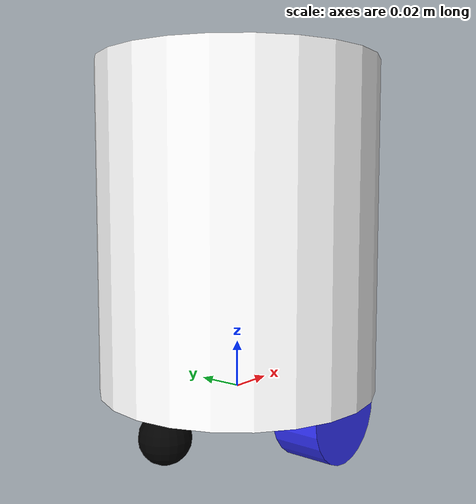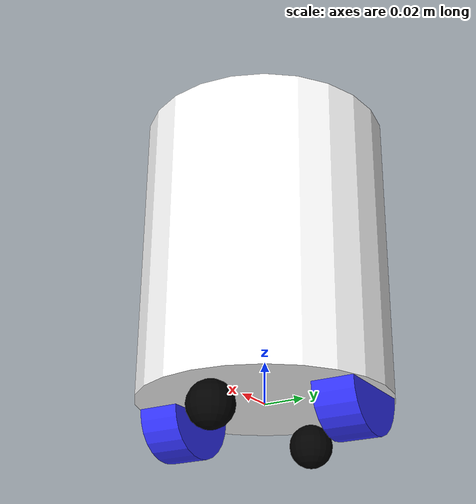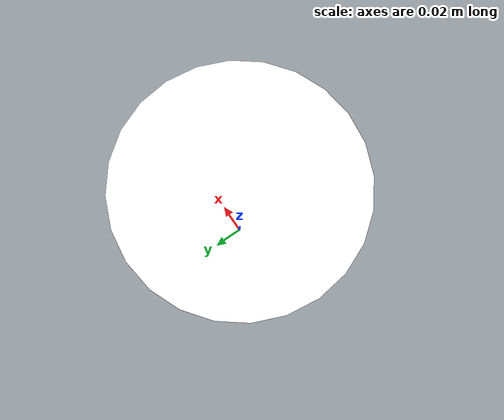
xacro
<?xml version="1.0"?>
<robot xmlns:xacro="http://www.ros.org/wiki/xacro" >

    <xacro:include filename="inertial_macros.xacro"/>

    <material name="white">
        <color rgba="1 1 1 1" />
    </material>

    <material name="orange">
        <color rgba="1 0.3 0.1 1"/>
    </material>

    <material name="blue">
        <color rgba="0.2 0.2 1 1"/>
    </material>

    <material name="black">
        <color rgba="0 0 0 1"/>
    </material>

    <material name="red">
        <color rgba="1 0 0 1"/>
    </material>

    <!-- BASE LINK -->

    <link name="base_link">

    </link>

    <!-- CHASSIS LINK -->

    <joint name="chassis_joint" type="fixed">
        <parent link="base_link"/>
        <child link="chassis"/>
        <origin xyz="0 0 0"/>
    </joint>

    <link name="chassis">
        <visual>
            <origin xyz="0 0 0.07"/>
            <geometry>
                <cylinder radius="0.06" length="0.14"/>
            </geometry>
            <material name="white"/>
        </visual>
        <collision>
            <origin xyz="0 0 0.07"/>
            <geometry>
                <cylinder radius="0.06" length="0.14"/>
            </geometry>
        </collision>
        <xacro:inertial_cylinder mass="0.5" length="0.14" radius="0.06">
            <origin xyz="0 0 0" rpy="0 0 0"/>
        </xacro:inertial_cylinder>
    </link>

    <gazebo reference="chassis">
        <material>Gazebo/Orange</material>
    </gazebo>

    <!-- LEFT WHEEL LINK -->

    <joint name="left_wheel_joint" type="continuous">
        <parent link="base_link"/>
        <child link="left_wheel"/>
        <origin xyz="0 0.045 0" rpy="-${pi/2} 0 0" />
        <axis xyz="0 0 1"/>
    </joint>

    <link name="left_wheel">
        <visual>
            <geometry>
                <cylinder radius="0.0215" length="0.02"/>
            </geometry>
            <material name="blue"/>
        </visual>
        <collision>
            <geometry>
                <cylinder radius="0.0215" length="0.02"/>
            </geometry>
        </collision>
        <xacro:inertial_cylinder mass="0.1" length="0.02" radius="0.0215">
            <origin xyz="0 0 0" rpy="0 0 0"/>
        </xacro:inertial_cylinder>
    </link>

    <gazebo reference="left_wheel">
        <material>Gazebo/Blue</material>
    </gazebo>

    <!-- RIGHT WHEEL LINK -->

    <joint name="right_wheel_joint" type="continuous">
        <parent link="base_link"/>
        <child link="right_wheel"/>
        <origin xyz="0 -0.045 0" rpy="${pi/2} 0 0" />
        <axis xyz="0 0 -1"/>
    </joint>

    <link name="right_wheel">
        <visual>
            <geometry>
                <cylinder radius="0.0215" length="0.02"/>
            </geometry>
            <material name="blue"/>
        </visual>
        <collision>
            <geometry>
                <cylinder radius="0.0215" length="0.02"/>
            </geometry>
        </collision>
        <xacro:inertial_cylinder mass="0.1" length="0.02" radius="0.0215">
            <origin xyz="0 0 0" rpy="0 0 0"/>
        </xacro:inertial_cylinder>
    </link>

    <gazebo reference="right_wheel">
        <material>Gazebo/Blue</material>
    </gazebo>

    <!-- CASTER WHEEL LINK -->

    <joint name="caster_wheel_joint" type="fixed">
        <parent link="chassis"/>
        <child link="caster_wheel"/>
        <origin xyz="0.045 0 -0.01075"/>
    </joint>

    <link name="caster_wheel">
        <visual>
            <geometry>
                <sphere radius="0.01075"/>
            </geometry>
            <material name="black"/>
        </visual>
        <collision>
            <geometry>
                <sphere radius="0.01075"/>
            </geometry>
        </collision>
        <xacro:inertial_sphere mass="0.1" radius="0.01075">
            <origin xyz="0 0 0" rpy="0 0 0"/>
        </xacro:inertial_sphere>
    </link>

    <gazebo reference="caster_wheel">
        <material>Gazebo/Black</material>
        <mu1 value="0.001"/>
        <mu2 value="0.001"/>
    </gazebo>

    <!-- CASTER WHEE LINK -->

    <joint name="caster_whee_joint" type="fixed">
        <parent link="chassis"/>
        <child link="caster_whee"/>
        <origin xyz="-0.045 0 -0.01075"/>
    </joint>

    <link name="caster_whee">
        <visual>
            <geometry>
                <sphere radius="0.01075"/>
            </geometry>
            <material name="black"/>
        </visual>
        <collision>
            <geometry>
                <sphere radius="0.01075"/>
            </geometry>
        </collision>
        <xacro:inertial_sphere mass="0.1" radius="0.01075">
            <origin xyz="0 0 0" rpy="0 0 0"/>
        </xacro:inertial_sphere>
    </link>
    <gazebo reference="caster_whee">
        <material>Gazebo/Black</material>
        <mu1 value="0.001"/>
        <mu2 value="0.001"/>
    </gazebo>

</robot>
